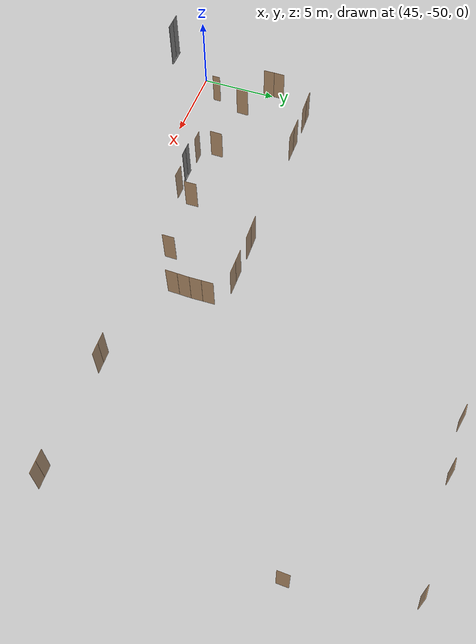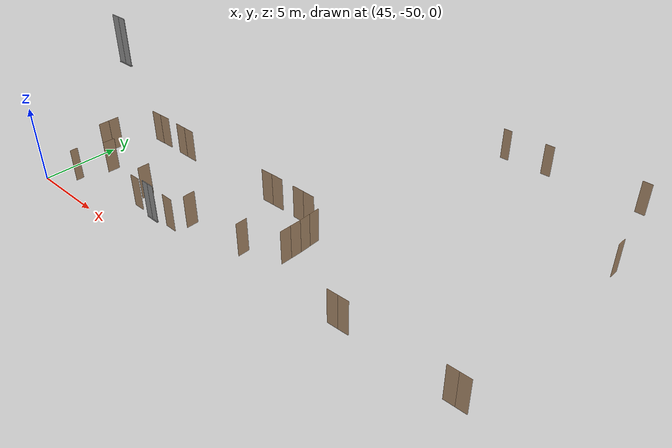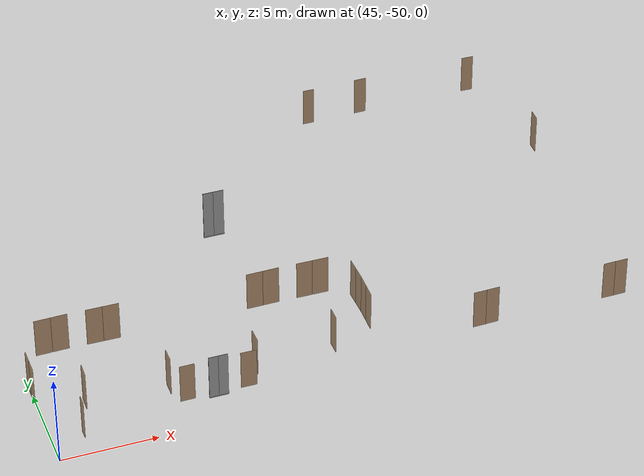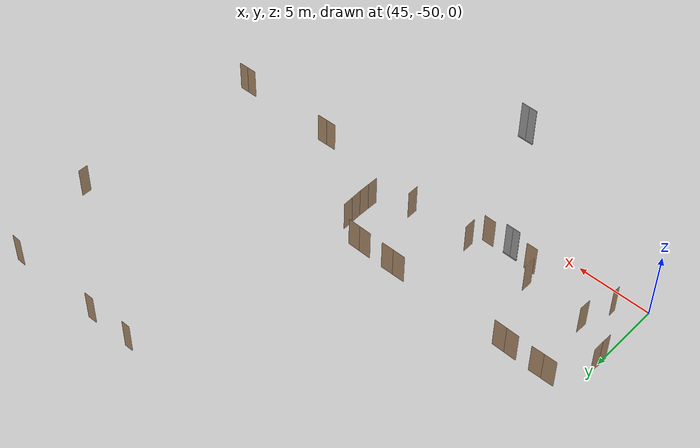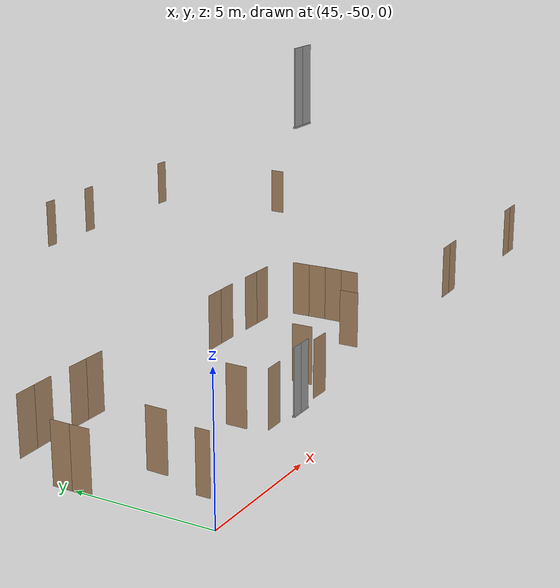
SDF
<sdf version="1.7">
 <world name="sim_world">
  <model name="door36_end">
   <pose>44.95192971620777 -44.93537122030715 0.0 0 0 1.5667686247497747</pose>
   <link name="right">
    <pose>0.3661388617693869 0 1.11 0 0 0</pose>
    <visual name="right_visual">
     <geometry><box><size>0.7222777235387738 0.03 2.2</size></box></geometry>
     <material>
      <ambient>0.5 0.25 0 0.6</ambient>
      <diffuse>0.5 0.25 0 0.6</diffuse>
      <pbr><metal><metalness>0.0</metalness></metal></pbr>
     </material>
    </visual>
    <collision name="right_collision">
     <geometry><box><size>0.7222777235387738 0.03 2.2</size></box></geometry>
     <surface><contact><collide_bitmask>0x02</collide_bitmask></contact></surface>
    </collision>
    <inertial>
     <mass>50.0</mass>
     <inertia><ixx>20.17041666666667</ixx><iyy>22.340354624668144</iyy><izz>2.1774379580014727</izz></inertia>
    </inertial>
   </link>
   <joint name="right_joint" type="revolute">
    <parent>world</parent>
    <child>right</child>
    <axis><xyz>0 0 1</xyz><limit><lower>0</lower><upper>1.57</upper></limit></axis>
    <pose>0.3661388617693869 0 0 0 0 0</pose>
   </joint>
   <link name="left">
    <pose>-0.3661388617693869 0 1.11 0 0 0</pose>
    <visual name="left_visual">
     <geometry><box><size>0.7222777235387738 0.03 2.2</size></box></geometry>
     <material>
      <ambient>0.5 0.25 0 0.6</ambient>
      <diffuse>0.5 0.25 0 0.6</diffuse>
      <pbr><metal><metalness>0.0</metalness></metal></pbr>
     </material>
    </visual>
    <collision name="left_collision">
     <geometry><box><size>0.7222777235387738 0.03 2.2</size></box></geometry>
     <surface><contact><collide_bitmask>0x02</collide_bitmask></contact></surface>
    </collision>
    <inertial>
     <mass>50.0</mass>
     <inertia><ixx>20.17041666666667</ixx><iyy>22.340354624668144</iyy><izz>2.1774379580014727</izz></inertia>
    </inertial>
   </link>
   <joint name="left_joint" type="revolute">
    <parent>world</parent>
    <child>left</child>
    <axis><xyz>0 0 1</xyz><limit><lower>-1.57</lower><upper>0</upper></limit></axis>
    <pose>-0.3661388617693869 0 0 0 0 0</pose>
   </joint>
   <plugin name="register_component" filename="libregister_component.so">
    <component name="Door">
     <v_max_door>0.5</v_max_door>
     <a_max_door>0.3</a_max_door>
     <a_nom_door>0.15</a_nom_door>
     <dx_min_door>0.01</dx_min_door>
     <f_max_door>500.0</f_max_door>
     <ros_interface>true</ros_interface>
     <door name="door36_end" type="DoubleSwingDoor" left_joint_name="left_joint" right_joint_name="right_joint"/>
    </component>
   </plugin>
  </model>
  <model name="door49_end">
   <pose>46.815868397158376 -42.05777112575127 0.0 0 0 -3.1202652108266618</pose>
   <link name="right">
    <pose>0.43596487206360895 0 1.11 0 0 0</pose>
    <visual name="right_visual">
     <geometry><box><size>0.8619297441272179 0.03 2.2</size></box></geometry>
     <material>
      <ambient>0.5 0.25 0 0.6</ambient>
      <diffuse>0.5 0.25 0 0.6</diffuse>
      <pbr><metal><metalness>0.0</metalness></metal></pbr>
     </material>
    </visual>
    <collision name="right_collision">
     <geometry><box><size>0.8619297441272179 0.03 2.2</size></box></geometry>
     <surface><contact><collide_bitmask>0x02</collide_bitmask></contact></surface>
    </collision>
    <inertial>
     <mass>50.0</mass>
     <inertia><ixx>20.17041666666667</ixx><iyy>23.26217868254672</iyy><izz>3.0992620158800475</izz></inertia>
    </inertial>
   </link>
   <joint name="right_joint" type="revolute">
    <parent>world</parent>
    <child>right</child>
    <axis><xyz>0 0 1</xyz><limit><lower>0</lower><upper>1.57</upper></limit></axis>
    <pose>0.43596487206360895 0 0 0 0 0</pose>
   </joint>
   <link name="left">
    <pose>-0.43596487206360895 0 1.11 0 0 0</pose>
    <visual name="left_visual">
     <geometry><box><size>0.8619297441272179 0.03 2.2</size></box></geometry>
     <material>
      <ambient>0.5 0.25 0 0.6</ambient>
      <diffuse>0.5 0.25 0 0.6</diffuse>
      <pbr><metal><metalness>0.0</metalness></metal></pbr>
     </material>
    </visual>
    <collision name="left_collision">
     <geometry><box><size>0.8619297441272179 0.03 2.2</size></box></geometry>
     <surface><contact><collide_bitmask>0x02</collide_bitmask></contact></surface>
    </collision>
    <inertial>
     <mass>50.0</mass>
     <inertia><ixx>20.17041666666667</ixx><iyy>23.26217868254672</iyy><izz>3.0992620158800475</izz></inertia>
    </inertial>
   </link>
   <joint name="left_joint" type="revolute">
    <parent>world</parent>
    <child>left</child>
    <axis><xyz>0 0 1</xyz><limit><lower>-1.57</lower><upper>0</upper></limit></axis>
    <pose>-0.43596487206360895 0 0 0 0 0</pose>
   </joint>
   <plugin name="register_component" filename="libregister_component.so">
    <component name="Door">
     <v_max_door>0.5</v_max_door>
     <a_max_door>0.3</a_max_door>
     <a_nom_door>0.15</a_nom_door>
     <dx_min_door>0.01</dx_min_door>
     <f_max_door>500.0</f_max_door>
     <ros_interface>true</ros_interface>
     <door name="door49_end" type="DoubleSwingDoor" left_joint_name="left_joint" right_joint_name="right_joint"/>
    </component>
   </plugin>
  </model>
  <model name="door50_end">
   <pose>49.47653123529472 -42.07753352592201 0.0 0 0 3.129558129345193</pose>
   <link name="right">
    <pose>0.43418292679981335 0 1.11 0 0 0</pose>
    <visual name="right_visual">
     <geometry><box><size>0.8583658535996267 0.03 2.2</size></box></geometry>
     <material>
      <ambient>0.5 0.25 0 0.6</ambient>
      <diffuse>0.5 0.25 0 0.6</diffuse>
      <pbr><metal><metalness>0.0</metalness></metal></pbr>
     </material>
    </visual>
    <collision name="right_collision">
     <geometry><box><size>0.8583658535996267 0.03 2.2</size></box></geometry>
     <surface><contact><collide_bitmask>0x02</collide_bitmask></contact></surface>
    </collision>
    <inertial>
     <mass>50.0</mass>
     <inertia><ixx>20.17041666666667</ixx><iyy>23.236633077607568</iyy><izz>3.073716410940899</izz></inertia>
    </inertial>
   </link>
   <joint name="right_joint" type="revolute">
    <parent>world</parent>
    <child>right</child>
    <axis><xyz>0 0 1</xyz><limit><lower>0</lower><upper>1.57</upper></limit></axis>
    <pose>0.43418292679981335 0 0 0 0 0</pose>
   </joint>
   <link name="left">
    <pose>-0.43418292679981335 0 1.11 0 0 0</pose>
    <visual name="left_visual">
     <geometry><box><size>0.8583658535996267 0.03 2.2</size></box></geometry>
     <material>
      <ambient>0.5 0.25 0 0.6</ambient>
      <diffuse>0.5 0.25 0 0.6</diffuse>
      <pbr><metal><metalness>0.0</metalness></metal></pbr>
     </material>
    </visual>
    <collision name="left_collision">
     <geometry><box><size>0.8583658535996267 0.03 2.2</size></box></geometry>
     <surface><contact><collide_bitmask>0x02</collide_bitmask></contact></surface>
    </collision>
    <inertial>
     <mass>50.0</mass>
     <inertia><ixx>20.17041666666667</ixx><iyy>23.236633077607568</iyy><izz>3.073716410940899</izz></inertia>
    </inertial>
   </link>
   <joint name="left_joint" type="revolute">
    <parent>world</parent>
    <child>left</child>
    <axis><xyz>0 0 1</xyz><limit><lower>-1.57</lower><upper>0</upper></limit></axis>
    <pose>-0.43418292679981335 0 0 0 0 0</pose>
   </joint>
   <plugin name="register_component" filename="libregister_component.so">
    <component name="Door">
     <v_max_door>0.5</v_max_door>
     <a_max_door>0.3</a_max_door>
     <a_nom_door>0.15</a_nom_door>
     <dx_min_door>0.01</dx_min_door>
     <f_max_door>500.0</f_max_door>
     <ros_interface>true</ros_interface>
     <door name="door50_end" type="DoubleSwingDoor" left_joint_name="left_joint" right_joint_name="right_joint"/>
    </component>
   </plugin>
  </model>
  <model name="door37">
   <pose>47.26558277316456 -46.43801729450027 0.0 0 0 1.5351024773288746</pose>
   <link name="right">
    <pose>0 0 1.11 0 0 0</pose>
    <visual name="right_visual">
     <geometry><box><size>0.80221301789509 0.03 2.2</size></box></geometry>
     <material>
      <ambient>0.5 0.25 0 0.6</ambient>
      <diffuse>0.5 0.25 0 0.6</diffuse>
      <pbr><metal><metalness>0.0</metalness></metal></pbr>
     </material>
    </visual>
    <collision name="right_collision">
     <geometry><box><size>0.80221301789509 0.03 2.2</size></box></geometry>
     <surface><contact><collide_bitmask>0x02</collide_bitmask></contact></surface>
    </collision>
    <inertial>
     <mass>50.0</mass>
     <inertia><ixx>20.17041666666667</ixx><iyy>22.848107192001457</iyy><izz>2.6851905253347836</izz></inertia>
    </inertial>
   </link>
   <joint name="right_joint" type="revolute">
    <parent>world</parent>
    <child>right</child>
    <axis><xyz>0 0 -1</xyz><limit><lower>0</lower><upper>1.57</upper></limit></axis>
    <pose>0.406106508947545 0 0 0 0 0</pose>
   </joint>
   <plugin name="register_component" filename="libregister_component.so">
    <component name="Door">
     <v_max_door>0.5</v_max_door>
     <a_max_door>0.3</a_max_door>
     <a_nom_door>0.15</a_nom_door>
     <dx_min_door>0.01</dx_min_door>
     <f_max_door>500.0</f_max_door>
     <ros_interface>true</ros_interface>
     <door name="door37" type="SwingDoor" left_joint_name="empty_joint" right_joint_name="right_joint"/>
    </component>
   </plugin>
  </model>
  <model name="door38">
   <pose>46.61042926447454 -48.55081250244917 0.0 0 0 1.5707963267948966</pose>
   <link name="right">
    <pose>0 0 1.11 0 0 0</pose>
    <visual name="right_visual">
     <geometry><box><size>0.5027743983691317 0.03 2.2</size></box></geometry>
     <material>
      <ambient>0.5 0.25 0 0.6</ambient>
      <diffuse>0.5 0.25 0 0.6</diffuse>
      <pbr><metal><metalness>0.0</metalness></metal></pbr>
     </material>
    </visual>
    <collision name="right_collision">
     <geometry><box><size>0.5027743983691317 0.03 2.2</size></box></geometry>
     <surface><contact><collide_bitmask>0x02</collide_bitmask></contact></surface>
    </collision>
    <inertial>
     <mass>50.0</mass>
     <inertia><ixx>20.17041666666667</ixx><iyy>21.21992539856435</iyy><izz>1.0570087318976766</izz></inertia>
    </inertial>
   </link>
   <joint name="right_joint" type="revolute">
    <parent>world</parent>
    <child>right</child>
    <axis><xyz>0 0 -1</xyz><limit><lower>0</lower><upper>1.57</upper></limit></axis>
    <pose>0.2563871991845659 0 0 0 0 0</pose>
   </joint>
   <plugin name="register_component" filename="libregister_component.so">
    <component name="Door">
     <v_max_door>0.5</v_max_door>
     <a_max_door>0.3</a_max_door>
     <a_nom_door>0.15</a_nom_door>
     <dx_min_door>0.01</dx_min_door>
     <f_max_door>500.0</f_max_door>
     <ros_interface>true</ros_interface>
     <door name="door38" type="SwingDoor" left_joint_name="empty_joint" right_joint_name="right_joint"/>
    </component>
   </plugin>
  </model>
  <model name="door41_end">
   <pose>51.48275919747453 -46.7297672127782 0.0 0 0 1.5593021539337586</pose>
   <link name="right">
    <pose>0 0 1.11 0 0 0</pose>
    <visual name="right_visual">
     <geometry><box><size>0.7975869382130849 0.03 2.2</size></box></geometry>
     <material>
      <ambient>0.5 0.25 0 0.6</ambient>
      <diffuse>0.5 0.25 0 0.6</diffuse>
      <pbr><metal><metalness>0.0</metalness></metal></pbr>
     </material>
    </visual>
    <collision name="right_collision">
     <geometry><box><size>0.7975869382130849 0.03 2.2</size></box></geometry>
     <surface><contact><collide_bitmask>0x02</collide_bitmask></contact></surface>
    </collision>
    <inertial>
     <mass>50.0</mass>
     <inertia><ixx>20.17041666666667</ixx><iyy>22.817270516700518</iyy><izz>2.6543538500338473</izz></inertia>
    </inertial>
   </link>
   <joint name="right_joint" type="revolute">
    <parent>world</parent>
    <child>right</child>
    <axis><xyz>0 0 -1</xyz><limit><lower>0</lower><upper>1.57</upper></limit></axis>
    <pose>0.40379346910654246 0 0 0 0 0</pose>
   </joint>
   <plugin name="register_component" filename="libregister_component.so">
    <component name="Door">
     <v_max_door>0.5</v_max_door>
     <a_max_door>0.3</a_max_door>
     <a_nom_door>0.15</a_nom_door>
     <dx_min_door>0.01</dx_min_door>
     <f_max_door>500.0</f_max_door>
     <ros_interface>true</ros_interface>
     <door name="door41_end" type="SwingDoor" left_joint_name="empty_joint" right_joint_name="right_joint"/>
    </component>
   </plugin>
  </model>
  <model name="door48_end">
   <pose>55.96141313616455 -46.750083559014314 0.0 0 0 1.5833114573458715</pose>
   <link name="right">
    <pose>0 0 1.11 0 0 0</pose>
    <visual name="right_visual">
     <geometry><box><size>0.7963091855763577 0.03 2.2</size></box></geometry>
     <material>
      <ambient>0.5 0.25 0 0.6</ambient>
      <diffuse>0.5 0.25 0 0.6</diffuse>
      <pbr><metal><metalness>0.0</metalness></metal></pbr>
     </material>
    </visual>
    <collision name="right_collision">
     <geometry><box><size>0.7963091855763577 0.03 2.2</size></box></geometry>
     <surface><contact><collide_bitmask>0x02</collide_bitmask></contact></surface>
    </collision>
    <inertial>
     <mass>50.0</mass>
     <inertia><ixx>20.17041666666667</ixx><iyy>22.80878466263868</iyy><izz>2.645867995972009</izz></inertia>
    </inertial>
   </link>
   <joint name="right_joint" type="revolute">
    <parent>world</parent>
    <child>right</child>
    <axis><xyz>0 0 1</xyz><limit><lower>0</lower><upper>1.57</upper></limit></axis>
    <pose>0.40315459278817883 0 0 0 0 0</pose>
   </joint>
   <plugin name="register_component" filename="libregister_component.so">
    <component name="Door">
     <v_max_door>0.5</v_max_door>
     <a_max_door>0.3</a_max_door>
     <a_nom_door>0.15</a_nom_door>
     <dx_min_door>0.01</dx_min_door>
     <f_max_door>500.0</f_max_door>
     <ros_interface>true</ros_interface>
     <door name="door48_end" type="SwingDoor" left_joint_name="empty_joint" right_joint_name="right_joint"/>
    </component>
   </plugin>
  </model>
  <model name="door47">
   <pose>60.19525285698211 -46.46607391413659 0.0 0 0 1.5732750204017658</pose>
   <link name="right">
    <pose>0 0 1.11 0 0 0</pose>
    <visual name="right_visual">
     <geometry><box><size>0.7631314241314915 0.03 2.2</size></box></geometry>
     <material>
      <ambient>0.5 0.25 0 0.6</ambient>
      <diffuse>0.5 0.25 0 0.6</diffuse>
      <pbr><metal><metalness>0.0</metalness></metal></pbr>
     </material>
    </visual>
    <collision name="right_collision">
     <geometry><box><size>0.7631314241314915 0.03 2.2</size></box></geometry>
     <surface><contact><collide_bitmask>0x02</collide_bitmask></contact></surface>
    </collision>
    <inertial>
     <mass>50.0</mass>
     <inertia><ixx>20.17041666666667</ixx><iyy>22.59320654373733</iyy><izz>2.4302898770706602</izz></inertia>
    </inertial>
   </link>
   <joint name="right_joint" type="revolute">
    <parent>world</parent>
    <child>right</child>
    <axis><xyz>0 0 1</xyz><limit><lower>0</lower><upper>1.57</upper></limit></axis>
    <pose>0.38656571206574575 0 0 0 0 0</pose>
   </joint>
   <plugin name="register_component" filename="libregister_component.so">
    <component name="Door">
     <v_max_door>0.5</v_max_door>
     <a_max_door>0.3</a_max_door>
     <a_nom_door>0.15</a_nom_door>
     <dx_min_door>0.01</dx_min_door>
     <f_max_door>500.0</f_max_door>
     <ros_interface>true</ros_interface>
     <door name="door47" type="SwingDoor" left_joint_name="empty_joint" right_joint_name="right_joint"/>
    </component>
   </plugin>
  </model>
  <model name="door56">
   <pose>68.10618655986823 -47.28682735334809 0.0 0 0 -3.1146337152956804</pose>
   <link name="right">
    <pose>0.3485212885823953 0 1.11 0 0 0</pose>
    <visual name="right_visual">
     <geometry><box><size>0.6870425771647906 0.03 2.2</size></box></geometry>
     <material>
      <ambient>0.5 0.25 0 0.6</ambient>
      <diffuse>0.5 0.25 0 0.6</diffuse>
      <pbr><metal><metalness>0.0</metalness></metal></pbr>
     </material>
    </visual>
    <collision name="right_collision">
     <geometry><box><size>0.6870425771647906 0.03 2.2</size></box></geometry>
     <surface><contact><collide_bitmask>0x02</collide_bitmask></contact></surface>
    </collision>
    <inertial>
     <mass>50.0</mass>
     <inertia><ixx>20.17041666666667</ixx><iyy>22.133447928488494</iyy><izz>1.9705312618218218</izz></inertia>
    </inertial>
   </link>
   <joint name="right_joint" type="revolute">
    <parent>world</parent>
    <child>right</child>
    <axis><xyz>0 0 1</xyz><limit><lower>0</lower><upper>1.57</upper></limit></axis>
    <pose>0.3485212885823953 0 0 0 0 0</pose>
   </joint>
   <link name="left">
    <pose>-0.3485212885823953 0 1.11 0 0 0</pose>
    <visual name="left_visual">
     <geometry><box><size>0.6870425771647906 0.03 2.2</size></box></geometry>
     <material>
      <ambient>0.5 0.25 0 0.6</ambient>
      <diffuse>0.5 0.25 0 0.6</diffuse>
      <pbr><metal><metalness>0.0</metalness></metal></pbr>
     </material>
    </visual>
    <collision name="left_collision">
     <geometry><box><size>0.6870425771647906 0.03 2.2</size></box></geometry>
     <surface><contact><collide_bitmask>0x02</collide_bitmask></contact></surface>
    </collision>
    <inertial>
     <mass>50.0</mass>
     <inertia><ixx>20.17041666666667</ixx><iyy>22.133447928488494</iyy><izz>1.9705312618218218</izz></inertia>
    </inertial>
   </link>
   <joint name="left_joint" type="revolute">
    <parent>world</parent>
    <child>left</child>
    <axis><xyz>0 0 1</xyz><limit><lower>-1.57</lower><upper>0</upper></limit></axis>
    <pose>-0.3485212885823953 0 0 0 0 0</pose>
   </joint>
   <plugin name="register_component" filename="libregister_component.so">
    <component name="Door">
     <v_max_door>0.5</v_max_door>
     <a_max_door>0.3</a_max_door>
     <a_nom_door>0.15</a_nom_door>
     <dx_min_door>0.01</dx_min_door>
     <f_max_door>500.0</f_max_door>
     <ros_interface>true</ros_interface>
     <door name="door56" type="DoubleSwingDoor" left_joint_name="left_joint" right_joint_name="right_joint"/>
    </component>
   </plugin>
  </model>
  <model name="door53">
   <pose>62.47268981847452 -43.48566442414712 0.0 0 0 1.598745332141674</pose>
   <link name="right">
    <pose>0.3659119960341987 0 1.11 0 0 0</pose>
    <visual name="right_visual">
     <geometry><box><size>0.7218239920683974 0.03 2.2</size></box></geometry>
     <material>
      <ambient>0.5 0.25 0 0.6</ambient>
      <diffuse>0.5 0.25 0 0.6</diffuse>
      <pbr><metal><metalness>0.0</metalness></metal></pbr>
     </material>
    </visual>
    <collision name="right_collision">
     <geometry><box><size>0.7218239920683974 0.03 2.2</size></box></geometry>
     <surface><contact><collide_bitmask>0x02</collide_bitmask></contact></surface>
    </collision>
    <inertial>
     <mass>50.0</mass>
     <inertia><ixx>20.17041666666667</ixx><iyy>22.337624481356496</iyy><izz>2.1747078146898247</izz></inertia>
    </inertial>
   </link>
   <joint name="right_joint" type="revolute">
    <parent>world</parent>
    <child>right</child>
    <axis><xyz>0 0 -1</xyz><limit><lower>0</lower><upper>1.57</upper></limit></axis>
    <pose>0.3659119960341987 0 0 0 0 0</pose>
   </joint>
   <link name="left">
    <pose>-0.3659119960341987 0 1.11 0 0 0</pose>
    <visual name="left_visual">
     <geometry><box><size>0.7218239920683974 0.03 2.2</size></box></geometry>
     <material>
      <ambient>0.5 0.25 0 0.6</ambient>
      <diffuse>0.5 0.25 0 0.6</diffuse>
      <pbr><metal><metalness>0.0</metalness></metal></pbr>
     </material>
    </visual>
    <collision name="left_collision">
     <geometry><box><size>0.7218239920683974 0.03 2.2</size></box></geometry>
     <surface><contact><collide_bitmask>0x02</collide_bitmask></contact></surface>
    </collision>
    <inertial>
     <mass>50.0</mass>
     <inertia><ixx>20.17041666666667</ixx><iyy>22.337624481356496</iyy><izz>2.1747078146898247</izz></inertia>
    </inertial>
   </link>
   <joint name="left_joint" type="revolute">
    <parent>world</parent>
    <child>left</child>
    <axis><xyz>0 0 -1</xyz><limit><lower>-1.57</lower><upper>0</upper></limit></axis>
    <pose>-0.3659119960341987 0 0 0 0 0</pose>
   </joint>
   <plugin name="register_component" filename="libregister_component.so">
    <component name="Door">
     <v_max_door>0.5</v_max_door>
     <a_max_door>0.3</a_max_door>
     <a_nom_door>0.15</a_nom_door>
     <dx_min_door>0.01</dx_min_door>
     <f_max_door>500.0</f_max_door>
     <ros_interface>true</ros_interface>
     <door name="door53" type="DoubleSwingDoor" left_joint_name="left_joint" right_joint_name="right_joint"/>
    </component>
   </plugin>
  </model>
  <model name="door54_end">
   <pose>62.47776516215473 -44.95916095808842 0.0 0 0 1.5500760995345082</pose>
   <link name="right">
    <pose>0.37105882723273803 0 1.11 0 0 0</pose>
    <visual name="right_visual">
     <geometry><box><size>0.732117654465476 0.03 2.2</size></box></geometry>
     <material>
      <ambient>0.5 0.25 0 0.6</ambient>
      <diffuse>0.5 0.25 0 0.6</diffuse>
      <pbr><metal><metalness>0.0</metalness></metal></pbr>
     </material>
    </visual>
    <collision name="right_collision">
     <geometry><box><size>0.732117654465476 0.03 2.2</size></box></geometry>
     <surface><contact><collide_bitmask>0x02</collide_bitmask></contact></surface>
    </collision>
    <inertial>
     <mass>50.0</mass>
     <inertia><ixx>20.17041666666667</ixx><iyy>22.399984416583465</iyy><izz>2.237067749916793</izz></inertia>
    </inertial>
   </link>
   <joint name="right_joint" type="revolute">
    <parent>world</parent>
    <child>right</child>
    <axis><xyz>0 0 -1</xyz><limit><lower>0</lower><upper>1.57</upper></limit></axis>
    <pose>0.37105882723273803 0 0 0 0 0</pose>
   </joint>
   <link name="left">
    <pose>-0.37105882723273803 0 1.11 0 0 0</pose>
    <visual name="left_visual">
     <geometry><box><size>0.732117654465476 0.03 2.2</size></box></geometry>
     <material>
      <ambient>0.5 0.25 0 0.6</ambient>
      <diffuse>0.5 0.25 0 0.6</diffuse>
      <pbr><metal><metalness>0.0</metalness></metal></pbr>
     </material>
    </visual>
    <collision name="left_collision">
     <geometry><box><size>0.732117654465476 0.03 2.2</size></box></geometry>
     <surface><contact><collide_bitmask>0x02</collide_bitmask></contact></surface>
    </collision>
    <inertial>
     <mass>50.0</mass>
     <inertia><ixx>20.17041666666667</ixx><iyy>22.399984416583465</iyy><izz>2.237067749916793</izz></inertia>
    </inertial>
   </link>
   <joint name="left_joint" type="revolute">
    <parent>world</parent>
    <child>left</child>
    <axis><xyz>0 0 -1</xyz><limit><lower>-1.57</lower><upper>0</upper></limit></axis>
    <pose>-0.37105882723273803 0 0 0 0 0</pose>
   </joint>
   <plugin name="register_component" filename="libregister_component.so">
    <component name="Door">
     <v_max_door>0.5</v_max_door>
     <a_max_door>0.3</a_max_door>
     <a_nom_door>0.15</a_nom_door>
     <dx_min_door>0.01</dx_min_door>
     <f_max_door>500.0</f_max_door>
     <ros_interface>true</ros_interface>
     <door name="door54_end" type="DoubleSwingDoor" left_joint_name="left_joint" right_joint_name="right_joint"/>
    </component>
   </plugin>
  </model>
  <model name="door51_end">
   <pose>57.93748846656873 -42.07043702767888 0.0 0 0 -3.127609959511843</pose>
   <link name="right">
    <pose>0.43472547180658544 0 1.11 0 0 0</pose>
    <visual name="right_visual">
     <geometry><box><size>0.8594509436131709 0.03 2.2</size></box></geometry>
     <material>
      <ambient>0.5 0.25 0 0.6</ambient>
      <diffuse>0.5 0.25 0 0.6</diffuse>
      <pbr><metal><metalness>0.0</metalness></metal></pbr>
     </material>
    </visual>
    <collision name="right_collision">
     <geometry><box><size>0.8594509436131709 0.03 2.2</size></box></geometry>
     <surface><contact><collide_bitmask>0x02</collide_bitmask></contact></surface>
    </collision>
    <inertial>
     <mass>50.0</mass>
     <inertia><ixx>20.17041666666667</ixx><iyy>23.244399685323213</iyy><izz>3.081483018656541</izz></inertia>
    </inertial>
   </link>
   <joint name="right_joint" type="revolute">
    <parent>world</parent>
    <child>right</child>
    <axis><xyz>0 0 1</xyz><limit><lower>0</lower><upper>1.57</upper></limit></axis>
    <pose>0.43472547180658544 0 0 0 0 0</pose>
   </joint>
   <link name="left">
    <pose>-0.43472547180658544 0 1.11 0 0 0</pose>
    <visual name="left_visual">
     <geometry><box><size>0.8594509436131709 0.03 2.2</size></box></geometry>
     <material>
      <ambient>0.5 0.25 0 0.6</ambient>
      <diffuse>0.5 0.25 0 0.6</diffuse>
      <pbr><metal><metalness>0.0</metalness></metal></pbr>
     </material>
    </visual>
    <collision name="left_collision">
     <geometry><box><size>0.8594509436131709 0.03 2.2</size></box></geometry>
     <surface><contact><collide_bitmask>0x02</collide_bitmask></contact></surface>
    </collision>
    <inertial>
     <mass>50.0</mass>
     <inertia><ixx>20.17041666666667</ixx><iyy>23.244399685323213</iyy><izz>3.081483018656541</izz></inertia>
    </inertial>
   </link>
   <joint name="left_joint" type="revolute">
    <parent>world</parent>
    <child>left</child>
    <axis><xyz>0 0 1</xyz><limit><lower>-1.57</lower><upper>0</upper></limit></axis>
    <pose>-0.43472547180658544 0 0 0 0 0</pose>
   </joint>
   <plugin name="register_component" filename="libregister_component.so">
    <component name="Door">
     <v_max_door>0.5</v_max_door>
     <a_max_door>0.3</a_max_door>
     <a_nom_door>0.15</a_nom_door>
     <dx_min_door>0.01</dx_min_door>
     <f_max_door>500.0</f_max_door>
     <ros_interface>true</ros_interface>
     <door name="door51_end" type="DoubleSwingDoor" left_joint_name="left_joint" right_joint_name="right_joint"/>
    </component>
   </plugin>
  </model>
  <model name="door52_end">
   <pose>60.60253795868236 -42.09265475635566 0.0 0 0 3.133200112638412</pose>
   <link name="right">
    <pose>0.426358855802999 0 1.11 0 0 0</pose>
    <visual name="right_visual">
     <geometry><box><size>0.842717711605998 0.03 2.2</size></box></geometry>
     <material>
      <ambient>0.5 0.25 0 0.6</ambient>
      <diffuse>0.5 0.25 0 0.6</diffuse>
      <pbr><metal><metalness>0.0</metalness></metal></pbr>
     </material>
    </visual>
    <collision name="right_collision">
     <geometry><box><size>0.842717711605998 0.03 2.2</size></box></geometry>
     <surface><contact><collide_bitmask>0x02</collide_bitmask></contact></surface>
    </collision>
    <inertial>
     <mass>50.0</mass>
     <inertia><ixx>20.17041666666667</ixx><iyy>23.12572142272688</iyy><izz>2.9628047560602084</izz></inertia>
    </inertial>
   </link>
   <joint name="right_joint" type="revolute">
    <parent>world</parent>
    <child>right</child>
    <axis><xyz>0 0 1</xyz><limit><lower>0</lower><upper>1.57</upper></limit></axis>
    <pose>0.426358855802999 0 0 0 0 0</pose>
   </joint>
   <link name="left">
    <pose>-0.426358855802999 0 1.11 0 0 0</pose>
    <visual name="left_visual">
     <geometry><box><size>0.842717711605998 0.03 2.2</size></box></geometry>
     <material>
      <ambient>0.5 0.25 0 0.6</ambient>
      <diffuse>0.5 0.25 0 0.6</diffuse>
      <pbr><metal><metalness>0.0</metalness></metal></pbr>
     </material>
    </visual>
    <collision name="left_collision">
     <geometry><box><size>0.842717711605998 0.03 2.2</size></box></geometry>
     <surface><contact><collide_bitmask>0x02</collide_bitmask></contact></surface>
    </collision>
    <inertial>
     <mass>50.0</mass>
     <inertia><ixx>20.17041666666667</ixx><iyy>23.12572142272688</iyy><izz>2.9628047560602084</izz></inertia>
    </inertial>
   </link>
   <joint name="left_joint" type="revolute">
    <parent>world</parent>
    <child>left</child>
    <axis><xyz>0 0 1</xyz><limit><lower>-1.57</lower><upper>0</upper></limit></axis>
    <pose>-0.426358855802999 0 0 0 0 0</pose>
   </joint>
   <plugin name="register_component" filename="libregister_component.so">
    <component name="Door">
     <v_max_door>0.5</v_max_door>
     <a_max_door>0.3</a_max_door>
     <a_nom_door>0.15</a_nom_door>
     <dx_min_door>0.01</dx_min_door>
     <f_max_door>500.0</f_max_door>
     <ros_interface>true</ros_interface>
     <door name="door52_end" type="DoubleSwingDoor" left_joint_name="left_joint" right_joint_name="right_joint"/>
    </component>
   </plugin>
  </model>
  <model name="door42_end">
   <pose>52.13240318854119 -47.808659518462136 0.0 0 0 -3.127740992227512</pose>
   <link name="right">
    <pose>0 0 1.11 0 0 0</pose>
    <visual name="right_visual">
     <geometry><box><size>0.768234136360717 0.03 2.2</size></box></geometry>
     <material>
      <ambient>0.5 0.25 0 0.6</ambient>
      <diffuse>0.5 0.25 0 0.6</diffuse>
      <pbr><metal><metalness>0.0</metalness></metal></pbr>
     </material>
    </visual>
    <collision name="right_collision">
     <geometry><box><size>0.768234136360717 0.03 2.2</size></box></geometry>
     <surface><contact><collide_bitmask>0x02</collide_bitmask></contact></surface>
    </collision>
    <inertial>
     <mass>50.0</mass>
     <inertia><ixx>20.17041666666667</ixx><iyy>22.625765367791242</iyy><izz>2.46284870112457</izz></inertia>
    </inertial>
   </link>
   <joint name="right_joint" type="revolute">
    <parent>world</parent>
    <child>right</child>
    <axis><xyz>0 0 -1</xyz><limit><lower>0</lower><upper>1.57</upper></limit></axis>
    <pose>0.3891170681803585 0 0 0 0 0</pose>
   </joint>
   <plugin name="register_component" filename="libregister_component.so">
    <component name="Door">
     <v_max_door>0.5</v_max_door>
     <a_max_door>0.3</a_max_door>
     <a_nom_door>0.15</a_nom_door>
     <dx_min_door>0.01</dx_min_door>
     <f_max_door>500.0</f_max_door>
     <ros_interface>true</ros_interface>
     <door name="door42_end" type="SwingDoor" left_joint_name="empty_joint" right_joint_name="right_joint"/>
    </component>
   </plugin>
  </model>
  <model name="door43_end">
   <pose>55.29465670313187 -47.82062175917153 0.0 0 0 3.125765763126355</pose>
   <link name="right">
    <pose>0 0 1.11 0 0 0</pose>
    <visual name="right_visual">
     <geometry><box><size>0.8281505115239736 0.03 2.2</size></box></geometry>
     <material>
      <ambient>0.5 0.25 0 0.6</ambient>
      <diffuse>0.5 0.25 0 0.6</diffuse>
      <pbr><metal><metalness>0.0</metalness></metal></pbr>
     </material>
    </visual>
    <collision name="right_collision">
     <geometry><box><size>0.8281505115239736 0.03 2.2</size></box></geometry>
     <surface><contact><collide_bitmask>0x02</collide_bitmask></contact></surface>
    </collision>
    <inertial>
     <mass>50.0</mass>
     <inertia><ixx>20.17041666666667</ixx><iyy>23.024305290572585</iyy><izz>2.861388623905913</izz></inertia>
    </inertial>
   </link>
   <joint name="right_joint" type="revolute">
    <parent>world</parent>
    <child>right</child>
    <axis><xyz>0 0 1</xyz><limit><lower>0</lower><upper>1.57</upper></limit></axis>
    <pose>0.4190752557619868 0 0 0 0 0</pose>
   </joint>
   <plugin name="register_component" filename="libregister_component.so">
    <component name="Door">
     <v_max_door>0.5</v_max_door>
     <a_max_door>0.3</a_max_door>
     <a_nom_door>0.15</a_nom_door>
     <dx_min_door>0.01</dx_min_door>
     <f_max_door>500.0</f_max_door>
     <ros_interface>true</ros_interface>
     <door name="door43_end" type="SwingDoor" left_joint_name="empty_joint" right_joint_name="right_joint"/>
    </component>
   </plugin>
  </model>
  <model name="door57">
   <pose>75.16077953172027 -47.3352901483122 0.0 0 0 -3.1212372699962905</pose>
   <link name="right">
    <pose>0.3302651884668247 0 1.11 0 0 0</pose>
    <visual name="right_visual">
     <geometry><box><size>0.6505303769336493 0.03 2.2</size></box></geometry>
     <material>
      <ambient>0.5 0.25 0 0.6</ambient>
      <diffuse>0.5 0.25 0 0.6</diffuse>
      <pbr><metal><metalness>0.0</metalness></metal></pbr>
     </material>
    </visual>
    <collision name="right_collision">
     <geometry><box><size>0.6505303769336493 0.03 2.2</size></box></geometry>
     <surface><contact><collide_bitmask>0x02</collide_bitmask></contact></surface>
    </collision>
    <inertial>
     <mass>50.0</mass>
     <inertia><ixx>20.17041666666667</ixx><iyy>21.929957380472654</iyy><izz>1.767040713805983</izz></inertia>
    </inertial>
   </link>
   <joint name="right_joint" type="revolute">
    <parent>world</parent>
    <child>right</child>
    <axis><xyz>0 0 1</xyz><limit><lower>0</lower><upper>1.57</upper></limit></axis>
    <pose>0.3302651884668247 0 0 0 0 0</pose>
   </joint>
   <link name="left">
    <pose>-0.3302651884668247 0 1.11 0 0 0</pose>
    <visual name="left_visual">
     <geometry><box><size>0.6505303769336493 0.03 2.2</size></box></geometry>
     <material>
      <ambient>0.5 0.25 0 0.6</ambient>
      <diffuse>0.5 0.25 0 0.6</diffuse>
      <pbr><metal><metalness>0.0</metalness></metal></pbr>
     </material>
    </visual>
    <collision name="left_collision">
     <geometry><box><size>0.6505303769336493 0.03 2.2</size></box></geometry>
     <surface><contact><collide_bitmask>0x02</collide_bitmask></contact></surface>
    </collision>
    <inertial>
     <mass>50.0</mass>
     <inertia><ixx>20.17041666666667</ixx><iyy>21.929957380472654</iyy><izz>1.767040713805983</izz></inertia>
    </inertial>
   </link>
   <joint name="left_joint" type="revolute">
    <parent>world</parent>
    <child>left</child>
    <axis><xyz>0 0 1</xyz><limit><lower>-1.57</lower><upper>0</upper></limit></axis>
    <pose>-0.3302651884668247 0 0 0 0 0</pose>
   </joint>
   <plugin name="register_component" filename="libregister_component.so">
    <component name="Door">
     <v_max_door>0.5</v_max_door>
     <a_max_door>0.3</a_max_door>
     <a_nom_door>0.15</a_nom_door>
     <dx_min_door>0.01</dx_min_door>
     <f_max_door>500.0</f_max_door>
     <ros_interface>true</ros_interface>
     <door name="door57" type="DoubleSwingDoor" left_joint_name="left_joint" right_joint_name="right_joint"/>
    </component>
   </plugin>
  </model>
  <model name="door_21">
   <pose>65.38533823030286 -27.73631903839531 0.0 0 0 3.141592653589793</pose>
   <link name="right">
    <pose>0 0 1.11 0 0 0</pose>
    <visual name="right_visual">
     <geometry><box><size>0.6010174816420653 0.03 2.2</size></box></geometry>
     <material>
      <ambient>0.5 0.25 0 0.6</ambient>
      <diffuse>0.5 0.25 0 0.6</diffuse>
      <pbr><metal><metalness>0.0</metalness></metal></pbr>
     </material>
    </visual>
    <collision name="right_collision">
     <geometry><box><size>0.6010174816420653 0.03 2.2</size></box></geometry>
     <surface><contact><collide_bitmask>0x02</collide_bitmask></contact></surface>
    </collision>
    <inertial>
     <mass>50.0</mass>
     <inertia><ixx>20.17041666666667</ixx><iyy>21.67175838849738</iyy><izz>1.5088417218307095</izz></inertia>
    </inertial>
   </link>
   <joint name="right_joint" type="revolute">
    <parent>world</parent>
    <child>right</child>
    <axis><xyz>0 0 -1</xyz><limit><lower>0</lower><upper>1.57</upper></limit></axis>
    <pose>0.30550874082103263 0 0 0 0 0</pose>
   </joint>
   <plugin name="register_component" filename="libregister_component.so">
    <component name="Door">
     <v_max_door>0.5</v_max_door>
     <a_max_door>0.3</a_max_door>
     <a_nom_door>0.15</a_nom_door>
     <dx_min_door>0.01</dx_min_door>
     <f_max_door>500.0</f_max_door>
     <ros_interface>true</ros_interface>
     <door name="door_21" type="SwingDoor" left_joint_name="empty_joint" right_joint_name="right_joint"/>
    </component>
   </plugin>
  </model>
  <model name="door_22">
   <pose>68.44334508399298 -27.686418977964237 0.0 0 0 -3.122179803614567</pose>
   <link name="right">
    <pose>0 0 1.11 0 0 0</pose>
    <visual name="right_visual">
     <geometry><box><size>0.6548306051185154 0.03 2.2</size></box></geometry>
     <material>
      <ambient>0.5 0.25 0 0.6</ambient>
      <diffuse>0.5 0.25 0 0.6</diffuse>
      <pbr><metal><metalness>0.0</metalness></metal></pbr>
     </material>
    </visual>
    <collision name="right_collision">
     <geometry><box><size>0.6548306051185154 0.03 2.2</size></box></geometry>
     <surface><contact><collide_bitmask>0x02</collide_bitmask></contact></surface>
    </collision>
    <inertial>
     <mass>50.0</mass>
     <inertia><ixx>20.17041666666667</ixx><iyy>21.953346339166178</iyy><izz>1.7904296724995046</izz></inertia>
    </inertial>
   </link>
   <joint name="right_joint" type="revolute">
    <parent>world</parent>
    <child>right</child>
    <axis><xyz>0 0 -1</xyz><limit><lower>0</lower><upper>1.57</upper></limit></axis>
    <pose>0.3324153025592577 0 0 0 0 0</pose>
   </joint>
   <plugin name="register_component" filename="libregister_component.so">
    <component name="Door">
     <v_max_door>0.5</v_max_door>
     <a_max_door>0.3</a_max_door>
     <a_nom_door>0.15</a_nom_door>
     <dx_min_door>0.01</dx_min_door>
     <f_max_door>500.0</f_max_door>
     <ros_interface>true</ros_interface>
     <door name="door_22" type="SwingDoor" left_joint_name="empty_joint" right_joint_name="right_joint"/>
    </component>
   </plugin>
  </model>
  <model name="door_23">
   <pose>74.83709537134825 -27.681268776707626 0.0 0 0 3.109329543830382</pose>
   <link name="right">
    <pose>0 0 1.11 0 0 0</pose>
    <visual name="right_visual">
     <geometry><box><size>0.6444161236183806 0.03 2.2</size></box></geometry>
     <material>
      <ambient>0.5 0.25 0 0.6</ambient>
      <diffuse>0.5 0.25 0 0.6</diffuse>
      <pbr><metal><metalness>0.0</metalness></metal></pbr>
     </material>
    </visual>
    <collision name="right_collision">
     <geometry><box><size>0.6444161236183806 0.03 2.2</size></box></geometry>
     <surface><contact><collide_bitmask>0x02</collide_bitmask></contact></surface>
    </collision>
    <inertial>
     <mass>50.0</mass>
     <inertia><ixx>20.17041666666667</ixx><iyy>21.896967251580588</iyy><izz>1.734050584913917</izz></inertia>
    </inertial>
   </link>
   <joint name="right_joint" type="revolute">
    <parent>world</parent>
    <child>right</child>
    <axis><xyz>0 0 1</xyz><limit><lower>0</lower><upper>1.57</upper></limit></axis>
    <pose>0.3272080618091903 0 0 0 0 0</pose>
   </joint>
   <plugin name="register_component" filename="libregister_component.so">
    <component name="Door">
     <v_max_door>0.5</v_max_door>
     <a_max_door>0.3</a_max_door>
     <a_nom_door>0.15</a_nom_door>
     <dx_min_door>0.01</dx_min_door>
     <f_max_door>500.0</f_max_door>
     <ros_interface>true</ros_interface>
     <door name="door_23" type="SwingDoor" left_joint_name="empty_joint" right_joint_name="right_joint"/>
    </component>
   </plugin>
  </model>
  <model name="door_24">
   <pose>76.21850211479708 -34.08310368231458 0.0 0 0 1.5504434580400581</pose>
   <link name="right">
    <pose>0 0 1.11 0 0 0</pose>
    <visual name="right_visual">
     <geometry><box><size>0.6770953131633332 0.03 2.2</size></box></geometry>
     <material>
      <ambient>0.5 0.25 0 0.6</ambient>
      <diffuse>0.5 0.25 0 0.6</diffuse>
      <pbr><metal><metalness>0.0</metalness></metal></pbr>
     </material>
    </visual>
    <collision name="right_collision">
     <geometry><box><size>0.6770953131633332 0.03 2.2</size></box></geometry>
     <surface><contact><collide_bitmask>0x02</collide_bitmask></contact></surface>
    </collision>
    <inertial>
     <mass>50.0</mass>
     <inertia><ixx>20.17041666666667</ixx><iyy>22.076908596282305</iyy><izz>1.9139919296156345</izz></inertia>
    </inertial>
   </link>
   <joint name="right_joint" type="revolute">
    <parent>world</parent>
    <child>right</child>
    <axis><xyz>0 0 -1</xyz><limit><lower>0</lower><upper>1.57</upper></limit></axis>
    <pose>0.3435476565816666 0 0 0 0 0</pose>
   </joint>
   <plugin name="register_component" filename="libregister_component.so">
    <component name="Door">
     <v_max_door>0.5</v_max_door>
     <a_max_door>0.3</a_max_door>
     <a_nom_door>0.15</a_nom_door>
     <dx_min_door>0.01</dx_min_door>
     <f_max_door>500.0</f_max_door>
     <ros_interface>true</ros_interface>
     <door name="door_24" type="SwingDoor" left_joint_name="empty_joint" right_joint_name="right_joint"/>
    </component>
   </plugin>
  </model>
  <model name="ShaftDoor_lift_TD_n0_door_lift">
   <pose>53.687853797129875 -47.95713981557261 0.0 0 0 0.0</pose>
   <link name="right_door">
    <pose>0.25 0 1.25 0 0 0</pose>
    <visual name="right_door_visual">
     <geometry><box><size>0.5 0.03 2.5</size></box></geometry>
     <material>
      <ambient>0.5 0.5 0.5 1</ambient>
      <diffuse>0.7 0.7 0.7 1</diffuse>
      <specular>0.6 0.6 0.6 1</specular>
      <emissive>0.1 0.1 0.1 1</emissive>
     </material>
    </visual>
    <collision name="right_door_collision">
     <geometry><box><size>0.5 0.03 2.5</size></box></geometry>
     <surface><contact><collide_bitmask>0x02</collide_bitmask></contact></surface>
    </collision>
   </link>
   <link name="left_door">
    <pose>-0.25 0 1.25 0 0 0</pose>
    <visual name="left_door_visual">
     <geometry><box><size>0.5 0.03 2.5</size></box></geometry>
     <material>
      <ambient>0.5 0.5 0.5 1</ambient>
      <diffuse>0.7 0.7 0.7 1</diffuse>
      <specular>0.6 0.6 0.6 1</specular>
      <emissive>0.1 0.1 0.1 1</emissive>
     </material>
    </visual>
    <collision name="left_door_collision">
     <geometry><box><size>0.5 0.03 2.5</size></box></geometry>
     <surface><contact><collide_bitmask>0x02</collide_bitmask></contact></surface>
    </collision>
   </link>
   <joint name="right_joint" type="prismatic">
    <parent>world</parent>
    <child>right_door</child>
    <axis><xyz>1 0 0</xyz><limit><lower>0</lower><upper>0.5</upper></limit></axis>
   </joint>
   <joint name="left_joint" type="prismatic">
    <parent>world</parent>
    <child>left_door</child>
    <axis><xyz>1 0 0</xyz><limit><lower>-0.5</lower><upper>0</upper></limit></axis>
   </joint>
   <link name="ramp">
    <pose>0 0 -0.025 0 0 0</pose>
    <visual name="ramp_visual">
     <geometry><box><size>1.0 0.1 0.05</size></box></geometry>
     <material>
      <ambient>0.5 0.5 0.5 1</ambient>
      <diffuse>0.7 0.7 0.7 1</diffuse>
      <specular>0.6 0.6 0.6 1</specular>
      <emissive>0.1 0.1 0.1 1</emissive>
     </material>
    </visual>
    <collision name="ramp_collision">
     <geometry><box><size>1.0 0.1 0.05</size></box></geometry>
     <surface><contact><collide_bitmask>0x02</collide_bitmask></contact></surface>
    </collision>
   </link>
   <joint name="ramp_joint" type="fixed"><parent>world</parent><child>ramp</child></joint>
   <plugin name="register_component" filename="libregister_component.so">
    <component name="Door">
     <v_max_door>0.3</v_max_door>
     <a_max_door>0.2</a_max_door>
     <a_nom_door>0.1</a_nom_door>
     <dx_min_door>0.0001</dx_min_door>
     <f_max_door>35.0</f_max_door>
     <door left_joint_name="left_joint" name="ShaftDoor_lift_TD_n0_door_lift" right_joint_name="right_joint" type="DoubleSlidingDoor"/>
    </component>
   </plugin>
  </model>
  <model name="ShaftDoor_lift_TD_n1_door_lift">
   <pose>53.687853797129875 -47.95713981557261 10.0 0 0 0.0</pose>
   <link name="right_door">
    <pose>0.25 0 1.25 0 0 0</pose>
    <visual name="right_door_visual">
     <geometry><box><size>0.5 0.03 2.5</size></box></geometry>
     <material>
      <ambient>0.5 0.5 0.5 1</ambient>
      <diffuse>0.7 0.7 0.7 1</diffuse>
      <specular>0.6 0.6 0.6 1</specular>
      <emissive>0.1 0.1 0.1 1</emissive>
     </material>
    </visual>
    <collision name="right_door_collision">
     <geometry><box><size>0.5 0.03 2.5</size></box></geometry>
     <surface><contact><collide_bitmask>0x02</collide_bitmask></contact></surface>
    </collision>
   </link>
   <link name="left_door">
    <pose>-0.25 0 1.25 0 0 0</pose>
    <visual name="left_door_visual">
     <geometry><box><size>0.5 0.03 2.5</size></box></geometry>
     <material>
      <ambient>0.5 0.5 0.5 1</ambient>
      <diffuse>0.7 0.7 0.7 1</diffuse>
      <specular>0.6 0.6 0.6 1</specular>
      <emissive>0.1 0.1 0.1 1</emissive>
     </material>
    </visual>
    <collision name="left_door_collision">
     <geometry><box><size>0.5 0.03 2.5</size></box></geometry>
     <surface><contact><collide_bitmask>0x02</collide_bitmask></contact></surface>
    </collision>
   </link>
   <joint name="right_joint" type="prismatic">
    <parent>world</parent>
    <child>right_door</child>
    <axis><xyz>1 0 0</xyz><limit><lower>0</lower><upper>0.5</upper></limit></axis>
   </joint>
   <joint name="left_joint" type="prismatic">
    <parent>world</parent>
    <child>left_door</child>
    <axis><xyz>1 0 0</xyz><limit><lower>-0.5</lower><upper>0</upper></limit></axis>
   </joint>
   <link name="ramp">
    <pose>0 0 -0.025 0 0 0</pose>
    <visual name="ramp_visual">
     <geometry><box><size>1.0 0.1 0.05</size></box></geometry>
     <material>
      <ambient>0.5 0.5 0.5 1</ambient>
      <diffuse>0.7 0.7 0.7 1</diffuse>
      <specular>0.6 0.6 0.6 1</specular>
      <emissive>0.1 0.1 0.1 1</emissive>
     </material>
    </visual>
    <collision name="ramp_collision">
     <geometry><box><size>1.0 0.1 0.05</size></box></geometry>
     <surface><contact><collide_bitmask>0x02</collide_bitmask></contact></surface>
    </collision>
   </link>
   <joint name="ramp_joint" type="fixed"><parent>world</parent><child>ramp</child></joint>
   <plugin name="register_component" filename="libregister_component.so">
    <component name="Door">
     <v_max_door>0.3</v_max_door>
     <a_max_door>0.2</a_max_door>
     <a_nom_door>0.1</a_nom_door>
     <dx_min_door>0.0001</dx_min_door>
     <f_max_door>35.0</f_max_door>
     <door left_joint_name="left_joint" name="ShaftDoor_lift_TD_n1_door_lift" right_joint_name="right_joint" type="DoubleSlidingDoor"/>
    </component>
   </plugin>
  </model>
 </world>
</sdf>
